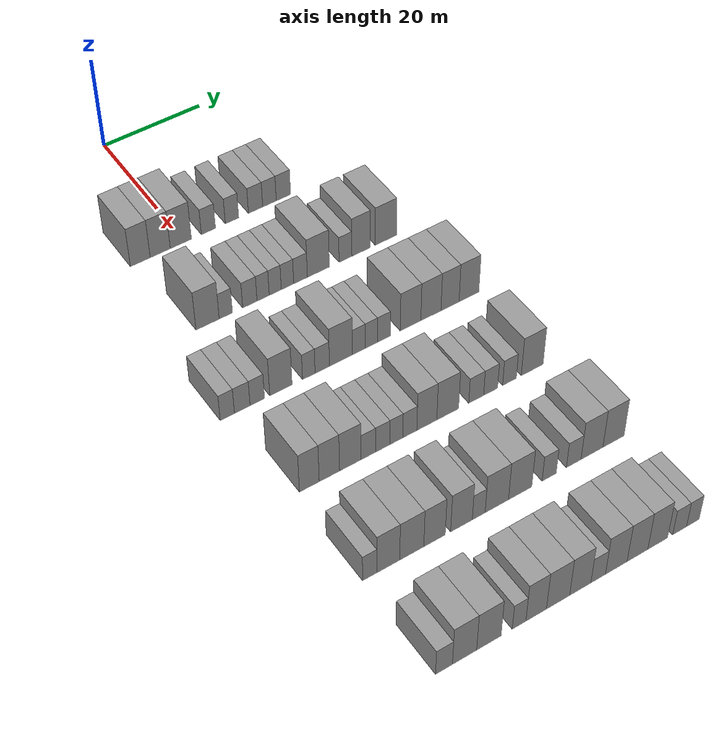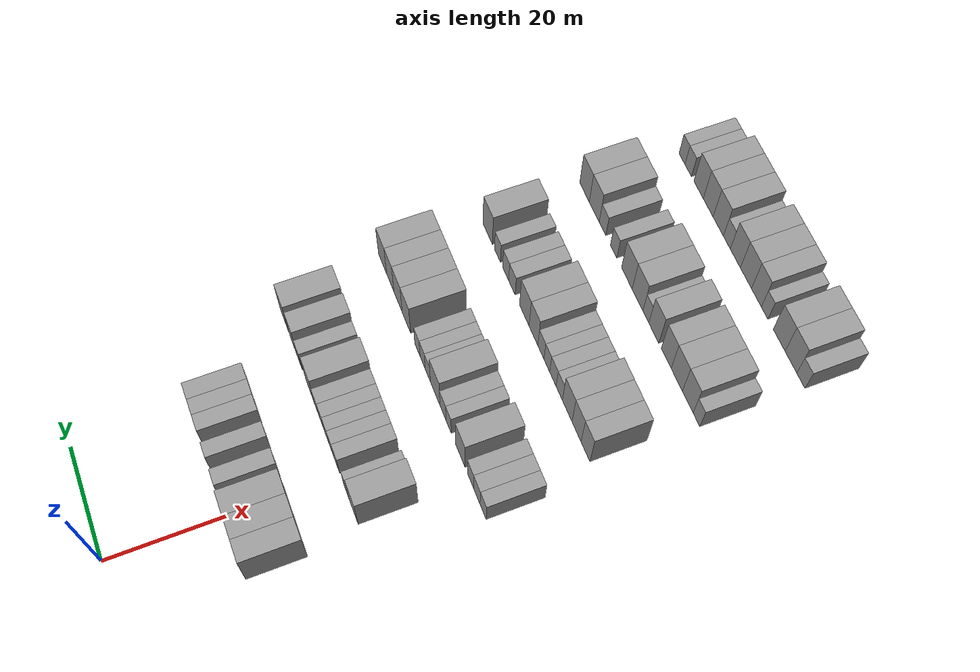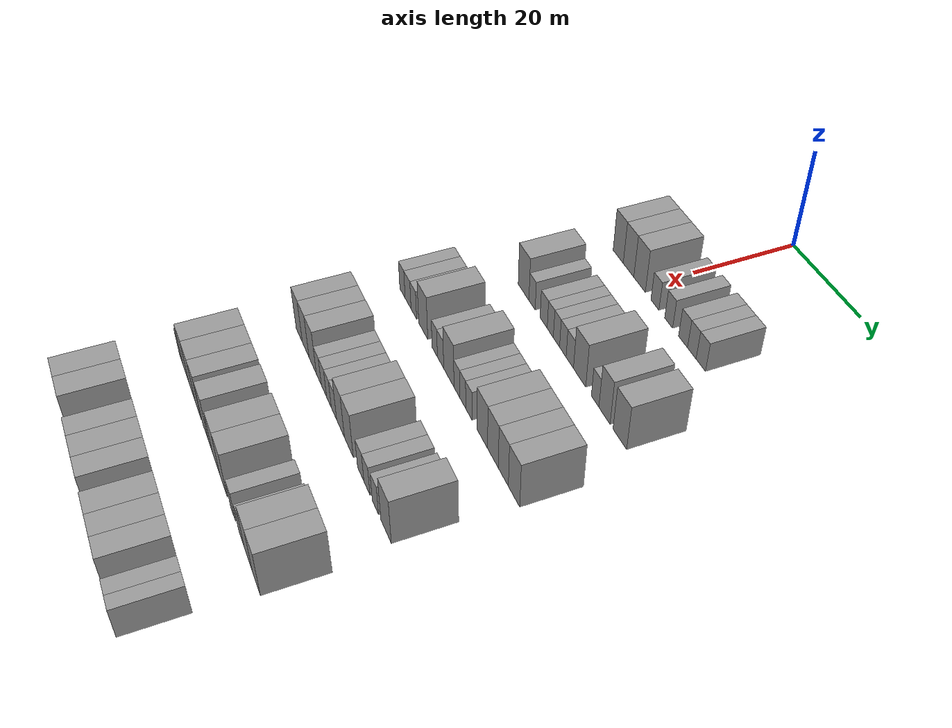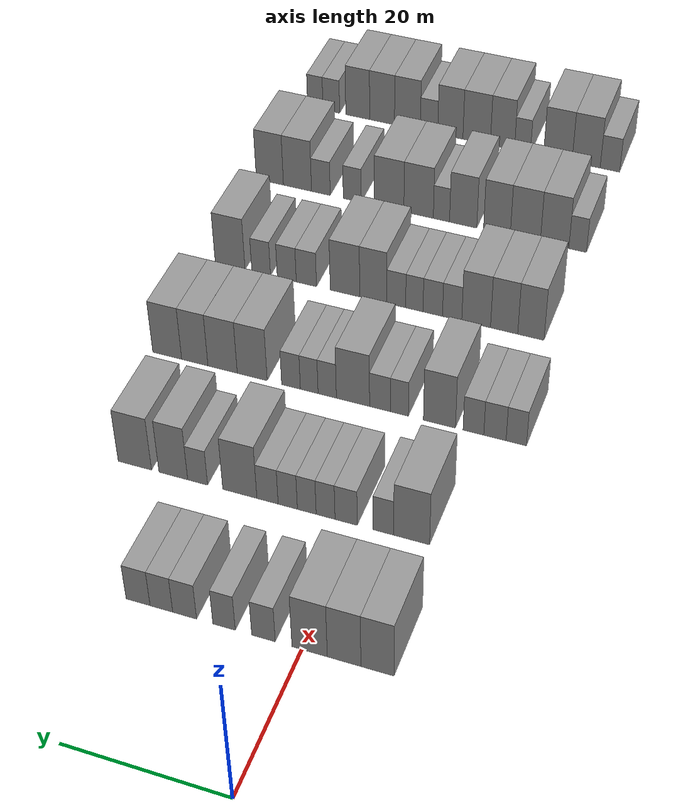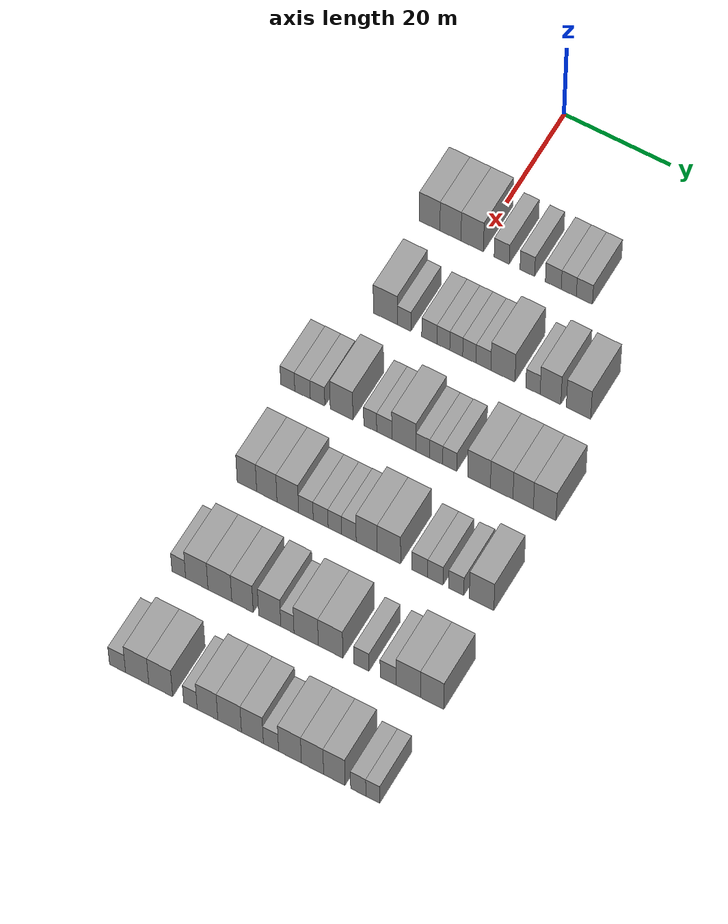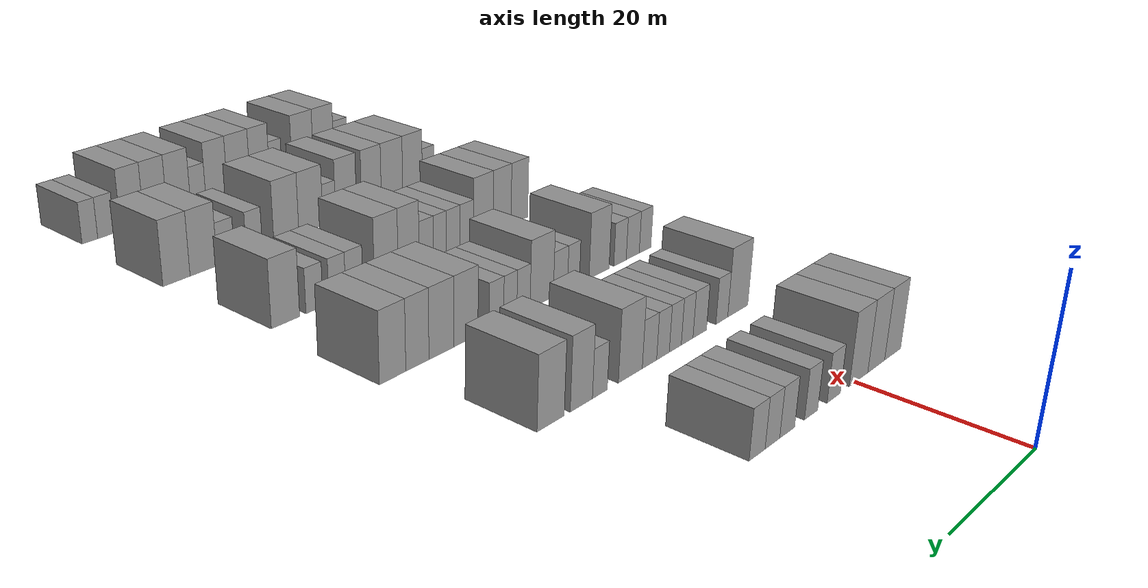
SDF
<sdf version="1.6">
 <world name="default">
  <model name="building_80">
   <static>1</static>
   <pose>25.0000 -8.8628 0 0.000000 0.000000 0.000000</pose>
   <link name="link">
    <pose>0 0 4.50 0 0 0</pose>
    <collision name="collision"><geometry><box><size>10.0000 3.8810 9.0000</size></box></geometry></collision>
    <visual name="visual">
     <cast_shadows>0</cast_shadows>
     <geometry><box><size>10.0000 3.8810 9.0000</size></box></geometry>
     <material>
      <script>
       <uri>model://grey_wall/materials/scripts</uri>
       <uri>model://grey_wall/materials/textures</uri>
       <name>vrc/grey_wall</name>
      </script>
     </material>
    </visual>
   </link>
  </model>
  <model name="building_81">
   <static>1</static>
   <pose>25.0000 -4.9381 0 0.000000 0.000000 0.000000</pose>
   <link name="link">
    <pose>0 0 4.50 0 0 0</pose>
    <collision name="collision"><geometry><box><size>10.0000 3.9684 9.0000</size></box></geometry></collision>
    <visual name="visual">
     <cast_shadows>0</cast_shadows>
     <geometry><box><size>10.0000 3.9684 9.0000</size></box></geometry>
     <material>
      <script>
       <uri>model://grey_wall/materials/scripts</uri>
       <uri>model://grey_wall/materials/textures</uri>
       <name>vrc/grey_wall</name>
      </script>
     </material>
    </visual>
   </link>
  </model>
  <model name="building_82">
   <static>1</static>
   <pose>25.0000 -0.8467 0 0.000000 0.000000 0.000000</pose>
   <link name="link">
    <pose>0 0 4.50 0 0 0</pose>
    <collision name="collision"><geometry><box><size>10.0000 4.2144 9.0000</size></box></geometry></collision>
    <visual name="visual">
     <cast_shadows>0</cast_shadows>
     <geometry><box><size>10.0000 4.2144 9.0000</size></box></geometry>
     <material>
      <script>
       <uri>model://grey_wall/materials/scripts</uri>
       <uri>model://grey_wall/materials/textures</uri>
       <name>vrc/grey_wall</name>
      </script>
     </material>
    </visual>
   </link>
  </model>
  <model name="building_83">
   <static>1</static>
   <pose>25.0000 4.6830 0 0.000000 0.000000 0.000000</pose>
   <link name="link">
    <pose>0 0 3.00 0 0 0</pose>
    <collision name="collision"><geometry><box><size>10.0000 2.8449 6.0000</size></box></geometry></collision>
    <visual name="visual">
     <cast_shadows>0</cast_shadows>
     <geometry><box><size>10.0000 2.8449 6.0000</size></box></geometry>
     <material>
      <script>
       <uri>model://grey_wall/materials/scripts</uri>
       <uri>model://grey_wall/materials/textures</uri>
       <name>vrc/grey_wall</name>
      </script>
     </material>
    </visual>
   </link>
  </model>
  <model name="building_84">
   <static>1</static>
   <pose>25.0000 9.4746 0 0.000000 0.000000 0.000000</pose>
   <link name="link">
    <pose>0 0 3.00 0 0 0</pose>
    <collision name="collision"><geometry><box><size>10.0000 2.7384 6.0000</size></box></geometry></collision>
    <visual name="visual">
     <cast_shadows>0</cast_shadows>
     <geometry><box><size>10.0000 2.7384 6.0000</size></box></geometry>
     <material>
      <script>
       <uri>model://grey_wall/materials/scripts</uri>
       <uri>model://grey_wall/materials/textures</uri>
       <name>vrc/grey_wall</name>
      </script>
     </material>
    </visual>
   </link>
  </model>
  <model name="building_85">
   <static>1</static>
   <pose>25.0000 14.3196 0 0.000000 0.000000 0.000000</pose>
   <link name="link">
    <pose>0 0 3.00 0 0 0</pose>
    <collision name="collision"><geometry><box><size>10.0000 2.9516 6.0000</size></box></geometry></collision>
    <visual name="visual">
     <cast_shadows>0</cast_shadows>
     <geometry><box><size>10.0000 2.9516 6.0000</size></box></geometry>
     <material>
      <script>
       <uri>model://grey_wall/materials/scripts</uri>
       <uri>model://grey_wall/materials/textures</uri>
       <name>vrc/grey_wall</name>
      </script>
     </material>
    </visual>
   </link>
  </model>
  <model name="building_86">
   <static>1</static>
   <pose>25.0000 17.2045 0 0.000000 0.000000 0.000000</pose>
   <link name="link">
    <pose>0 0 3.00 0 0 0</pose>
    <collision name="collision"><geometry><box><size>10.0000 2.8181 6.0000</size></box></geometry></collision>
    <visual name="visual">
     <cast_shadows>0</cast_shadows>
     <geometry><box><size>10.0000 2.8181 6.0000</size></box></geometry>
     <material>
      <script>
       <uri>model://grey_wall/materials/scripts</uri>
       <uri>model://grey_wall/materials/textures</uri>
       <name>vrc/grey_wall</name>
      </script>
     </material>
    </visual>
   </link>
  </model>
  <model name="building_87">
   <static>1</static>
   <pose>25.0000 20.1125 0 0.000000 0.000000 0.000000</pose>
   <link name="link">
    <pose>0 0 3.00 0 0 0</pose>
    <collision name="collision"><geometry><box><size>10.0000 2.9980 6.0000</size></box></geometry></collision>
    <visual name="visual">
     <cast_shadows>0</cast_shadows>
     <geometry><box><size>10.0000 2.9980 6.0000</size></box></geometry>
     <material>
      <script>
       <uri>model://grey_wall/materials/scripts</uri>
       <uri>model://grey_wall/materials/textures</uri>
       <name>vrc/grey_wall</name>
      </script>
     </material>
    </visual>
   </link>
  </model>
  <model name="building_240">
   <static>1</static>
   <pose>44.0000 -6.4663 0 0.000000 0.000000 0.000000</pose>
   <link name="link">
    <pose>0 0 4.50 0 0 0</pose>
    <collision name="collision"><geometry><box><size>10.0000 4.4723 9.0000</size></box></geometry></collision>
    <visual name="visual">
     <cast_shadows>0</cast_shadows>
     <geometry><box><size>10.0000 4.4723 9.0000</size></box></geometry>
     <material>
      <script>
       <uri>model://grey_wall/materials/scripts</uri>
       <uri>model://grey_wall/materials/textures</uri>
       <name>vrc/grey_wall</name>
      </script>
     </material>
    </visual>
   </link>
  </model>
  <model name="building_241">
   <static>1</static>
   <pose>44.0000 -2.9451 0 0.000000 0.000000 0.000000</pose>
   <link name="link">
    <pose>0 0 3.00 0 0 0</pose>
    <collision name="collision"><geometry><box><size>10.0000 2.5700 6.0000</size></box></geometry></collision>
    <visual name="visual">
     <cast_shadows>0</cast_shadows>
     <geometry><box><size>10.0000 2.5700 6.0000</size></box></geometry>
     <material>
      <script>
       <uri>model://grey_wall/materials/scripts</uri>
       <uri>model://grey_wall/materials/textures</uri>
       <name>vrc/grey_wall</name>
      </script>
     </material>
    </visual>
   </link>
  </model>
  <model name="building_242">
   <static>1</static>
   <pose>44.0000 1.7501 0 0.000000 0.000000 0.000000</pose>
   <link name="link">
    <pose>0 0 3.00 0 0 0</pose>
    <collision name="collision"><geometry><box><size>10.0000 2.8204 6.0000</size></box></geometry></collision>
    <visual name="visual">
     <cast_shadows>0</cast_shadows>
     <geometry><box><size>10.0000 2.8204 6.0000</size></box></geometry>
     <material>
      <script>
       <uri>model://grey_wall/materials/scripts</uri>
       <uri>model://grey_wall/materials/textures</uri>
       <name>vrc/grey_wall</name>
      </script>
     </material>
    </visual>
   </link>
  </model>
  <model name="building_243">
   <static>1</static>
   <pose>44.0000 4.3625 0 0.000000 0.000000 0.000000</pose>
   <link name="link">
    <pose>0 0 3.00 0 0 0</pose>
    <collision name="collision"><geometry><box><size>10.0000 2.4045 6.0000</size></box></geometry></collision>
    <visual name="visual">
     <cast_shadows>0</cast_shadows>
     <geometry><box><size>10.0000 2.4045 6.0000</size></box></geometry>
     <material>
      <script>
       <uri>model://grey_wall/materials/scripts</uri>
       <uri>model://grey_wall/materials/textures</uri>
       <name>vrc/grey_wall</name>
      </script>
     </material>
    </visual>
   </link>
  </model>
  <model name="building_244">
   <static>1</static>
   <pose>44.0000 6.7687 0 0.000000 0.000000 0.000000</pose>
   <link name="link">
    <pose>0 0 3.00 0 0 0</pose>
    <collision name="collision"><geometry><box><size>10.0000 2.4079 6.0000</size></box></geometry></collision>
    <visual name="visual">
     <cast_shadows>0</cast_shadows>
     <geometry><box><size>10.0000 2.4079 6.0000</size></box></geometry>
     <material>
      <script>
       <uri>model://grey_wall/materials/scripts</uri>
       <uri>model://grey_wall/materials/textures</uri>
       <name>vrc/grey_wall</name>
      </script>
     </material>
    </visual>
   </link>
  </model>
  <model name="building_245">
   <static>1</static>
   <pose>44.0000 9.2122 0 0.000000 0.000000 0.000000</pose>
   <link name="link">
    <pose>0 0 3.00 0 0 0</pose>
    <collision name="collision"><geometry><box><size>10.0000 2.4792 6.0000</size></box></geometry></collision>
    <visual name="visual">
     <cast_shadows>0</cast_shadows>
     <geometry><box><size>10.0000 2.4792 6.0000</size></box></geometry>
     <material>
      <script>
       <uri>model://grey_wall/materials/scripts</uri>
       <uri>model://grey_wall/materials/textures</uri>
       <name>vrc/grey_wall</name>
      </script>
     </material>
    </visual>
   </link>
  </model>
  <model name="building_246">
   <static>1</static>
   <pose>44.0000 11.8305 0 0.000000 0.000000 0.000000</pose>
   <link name="link">
    <pose>0 0 3.00 0 0 0</pose>
    <collision name="collision"><geometry><box><size>10.0000 2.7574 6.0000</size></box></geometry></collision>
    <visual name="visual">
     <cast_shadows>0</cast_shadows>
     <geometry><box><size>10.0000 2.7574 6.0000</size></box></geometry>
     <material>
      <script>
       <uri>model://grey_wall/materials/scripts</uri>
       <uri>model://grey_wall/materials/textures</uri>
       <name>vrc/grey_wall</name>
      </script>
     </material>
    </visual>
   </link>
  </model>
  <model name="building_247">
   <static>1</static>
   <pose>44.0000 15.4380 0 0.000000 0.000000 0.000000</pose>
   <link name="link">
    <pose>0 0 4.50 0 0 0</pose>
    <collision name="collision"><geometry><box><size>10.0000 4.4575 9.0000</size></box></geometry></collision>
    <visual name="visual">
     <cast_shadows>0</cast_shadows>
     <geometry><box><size>10.0000 4.4575 9.0000</size></box></geometry>
     <material>
      <script>
       <uri>model://grey_wall/materials/scripts</uri>
       <uri>model://grey_wall/materials/textures</uri>
       <name>vrc/grey_wall</name>
      </script>
     </material>
    </visual>
   </link>
  </model>
  <model name="building_248">
   <static>1</static>
   <pose>44.0000 20.9853 0 0.000000 0.000000 0.000000</pose>
   <link name="link">
    <pose>0 0 3.00 0 0 0</pose>
    <collision name="collision"><geometry><box><size>10.0000 2.6373 6.0000</size></box></geometry></collision>
    <visual name="visual">
     <cast_shadows>0</cast_shadows>
     <geometry><box><size>10.0000 2.6373 6.0000</size></box></geometry>
     <material>
      <script>
       <uri>model://grey_wall/materials/scripts</uri>
       <uri>model://grey_wall/materials/textures</uri>
       <name>vrc/grey_wall</name>
      </script>
     </material>
    </visual>
   </link>
  </model>
  <model name="building_249">
   <static>1</static>
   <pose>44.0000 24.2152 0 0.000000 0.000000 0.000000</pose>
   <link name="link">
    <pose>0 0 4.50 0 0 0</pose>
    <collision name="collision"><geometry><box><size>10.0000 3.8224 9.0000</size></box></geometry></collision>
    <visual name="visual">
     <cast_shadows>0</cast_shadows>
     <geometry><box><size>10.0000 3.8224 9.0000</size></box></geometry>
     <material>
      <script>
       <uri>model://grey_wall/materials/scripts</uri>
       <uri>model://grey_wall/materials/textures</uri>
       <name>vrc/grey_wall</name>
      </script>
     </material>
    </visual>
   </link>
  </model>
  <model name="building_250">
   <static>1</static>
   <pose>44.0000 29.3676 0 0.000000 0.000000 0.000000</pose>
   <link name="link">
    <pose>0 0 4.50 0 0 0</pose>
    <collision name="collision"><geometry><box><size>10.0000 4.4823 9.0000</size></box></geometry></collision>
    <visual name="visual">
     <cast_shadows>0</cast_shadows>
     <geometry><box><size>10.0000 4.4823 9.0000</size></box></geometry>
     <material>
      <script>
       <uri>model://grey_wall/materials/scripts</uri>
       <uri>model://grey_wall/materials/textures</uri>
       <name>vrc/grey_wall</name>
      </script>
     </material>
    </visual>
   </link>
  </model>
  <model name="building_420">
   <static>1</static>
   <pose>63.0000 -13.8254 0 0.000000 0.000000 0.000000</pose>
   <link name="link">
    <pose>0 0 3.00 0 0 0</pose>
    <collision name="collision"><geometry><box><size>10.0000 2.6360 6.0000</size></box></geometry></collision>
    <visual name="visual">
     <cast_shadows>0</cast_shadows>
     <geometry><box><size>10.0000 2.6360 6.0000</size></box></geometry>
     <material>
      <script>
       <uri>model://grey_wall/materials/scripts</uri>
       <uri>model://grey_wall/materials/textures</uri>
       <name>vrc/grey_wall</name>
      </script>
     </material>
    </visual>
   </link>
  </model>
  <model name="building_421">
   <static>1</static>
   <pose>63.0000 -11.0564 0 0.000000 0.000000 0.000000</pose>
   <link name="link">
    <pose>0 0 3.00 0 0 0</pose>
    <collision name="collision"><geometry><box><size>10.0000 2.9020 6.0000</size></box></geometry></collision>
    <visual name="visual">
     <cast_shadows>0</cast_shadows>
     <geometry><box><size>10.0000 2.9020 6.0000</size></box></geometry>
     <material>
      <script>
       <uri>model://grey_wall/materials/scripts</uri>
       <uri>model://grey_wall/materials/textures</uri>
       <name>vrc/grey_wall</name>
      </script>
     </material>
    </visual>
   </link>
  </model>
  <model name="building_422">
   <static>1</static>
   <pose>63.0000 -8.2516 0 0.000000 0.000000 0.000000</pose>
   <link name="link">
    <pose>0 0 3.00 0 0 0</pose>
    <collision name="collision"><geometry><box><size>10.0000 2.7077 6.0000</size></box></geometry></collision>
    <visual name="visual">
     <cast_shadows>0</cast_shadows>
     <geometry><box><size>10.0000 2.7077 6.0000</size></box></geometry>
     <material>
      <script>
       <uri>model://grey_wall/materials/scripts</uri>
       <uri>model://grey_wall/materials/textures</uri>
       <name>vrc/grey_wall</name>
      </script>
     </material>
    </visual>
   </link>
  </model>
  <model name="building_423">
   <static>1</static>
   <pose>63.0000 -3.7845 0 0.000000 0.000000 0.000000</pose>
   <link name="link">
    <pose>0 0 4.50 0 0 0</pose>
    <collision name="collision"><geometry><box><size>10.0000 4.2264 9.0000</size></box></geometry></collision>
    <visual name="visual">
     <cast_shadows>0</cast_shadows>
     <geometry><box><size>10.0000 4.2264 9.0000</size></box></geometry>
     <material>
      <script>
       <uri>model://grey_wall/materials/scripts</uri>
       <uri>model://grey_wall/materials/textures</uri>
       <name>vrc/grey_wall</name>
      </script>
     </material>
    </visual>
   </link>
  </model>
  <model name="building_424">
   <static>1</static>
   <pose>63.0000 1.5301 0 0.000000 0.000000 0.000000</pose>
   <link name="link">
    <pose>0 0 3.00 0 0 0</pose>
    <collision name="collision"><geometry><box><size>10.0000 2.4029 6.0000</size></box></geometry></collision>
    <visual name="visual">
     <cast_shadows>0</cast_shadows>
     <geometry><box><size>10.0000 2.4029 6.0000</size></box></geometry>
     <material>
      <script>
       <uri>model://grey_wall/materials/scripts</uri>
       <uri>model://grey_wall/materials/textures</uri>
       <name>vrc/grey_wall</name>
      </script>
     </material>
    </visual>
   </link>
  </model>
  <model name="building_425">
   <static>1</static>
   <pose>63.0000 4.1289 0 0.000000 0.000000 0.000000</pose>
   <link name="link">
    <pose>0 0 3.00 0 0 0</pose>
    <collision name="collision"><geometry><box><size>10.0000 2.7946 6.0000</size></box></geometry></collision>
    <visual name="visual">
     <cast_shadows>0</cast_shadows>
     <geometry><box><size>10.0000 2.7946 6.0000</size></box></geometry>
     <material>
      <script>
       <uri>model://grey_wall/materials/scripts</uri>
       <uri>model://grey_wall/materials/textures</uri>
       <name>vrc/grey_wall</name>
      </script>
     </material>
    </visual>
   </link>
  </model>
  <model name="building_426">
   <static>1</static>
   <pose>63.0000 7.7717 0 0.000000 0.000000 0.000000</pose>
   <link name="link">
    <pose>0 0 4.50 0 0 0</pose>
    <collision name="collision"><geometry><box><size>10.0000 4.4909 9.0000</size></box></geometry></collision>
    <visual name="visual">
     <cast_shadows>0</cast_shadows>
     <geometry><box><size>10.0000 4.4909 9.0000</size></box></geometry>
     <material>
      <script>
       <uri>model://grey_wall/materials/scripts</uri>
       <uri>model://grey_wall/materials/textures</uri>
       <name>vrc/grey_wall</name>
      </script>
     </material>
    </visual>
   </link>
  </model>
  <model name="building_427">
   <static>1</static>
   <pose>63.0000 11.2611 0 0.000000 0.000000 0.000000</pose>
   <link name="link">
    <pose>0 0 3.00 0 0 0</pose>
    <collision name="collision"><geometry><box><size>10.0000 2.4879 6.0000</size></box></geometry></collision>
    <visual name="visual">
     <cast_shadows>0</cast_shadows>
     <geometry><box><size>10.0000 2.4879 6.0000</size></box></geometry>
     <material>
      <script>
       <uri>model://grey_wall/materials/scripts</uri>
       <uri>model://grey_wall/materials/textures</uri>
       <name>vrc/grey_wall</name>
      </script>
     </material>
    </visual>
   </link>
  </model>
  <model name="building_428">
   <static>1</static>
   <pose>63.0000 13.7171 0 0.000000 0.000000 0.000000</pose>
   <link name="link">
    <pose>0 0 3.00 0 0 0</pose>
    <collision name="collision"><geometry><box><size>10.0000 2.4240 6.0000</size></box></geometry></collision>
    <visual name="visual">
     <cast_shadows>0</cast_shadows>
     <geometry><box><size>10.0000 2.4240 6.0000</size></box></geometry>
     <material>
      <script>
       <uri>model://grey_wall/materials/scripts</uri>
       <uri>model://grey_wall/materials/textures</uri>
       <name>vrc/grey_wall</name>
      </script>
     </material>
    </visual>
   </link>
  </model>
  <model name="building_429">
   <static>1</static>
   <pose>63.0000 16.2190 0 0.000000 0.000000 0.000000</pose>
   <link name="link">
    <pose>0 0 3.00 0 0 0</pose>
    <collision name="collision"><geometry><box><size>10.0000 2.5798 6.0000</size></box></geometry></collision>
    <visual name="visual">
     <cast_shadows>0</cast_shadows>
     <geometry><box><size>10.0000 2.5798 6.0000</size></box></geometry>
     <material>
      <script>
       <uri>model://grey_wall/materials/scripts</uri>
       <uri>model://grey_wall/materials/textures</uri>
       <name>vrc/grey_wall</name>
      </script>
     </material>
    </visual>
   </link>
  </model>
  <model name="building_430">
   <static>1</static>
   <pose>63.0000 21.5932 0 0.000000 0.000000 0.000000</pose>
   <link name="link">
    <pose>0 0 4.50 0 0 0</pose>
    <collision name="collision"><geometry><box><size>10.0000 4.1685 9.0000</size></box></geometry></collision>
    <visual name="visual">
     <cast_shadows>0</cast_shadows>
     <geometry><box><size>10.0000 4.1685 9.0000</size></box></geometry>
     <material>
      <script>
       <uri>model://grey_wall/materials/scripts</uri>
       <uri>model://grey_wall/materials/textures</uri>
       <name>vrc/grey_wall</name>
      </script>
     </material>
    </visual>
   </link>
  </model>
  <model name="building_431">
   <static>1</static>
   <pose>63.0000 25.7359 0 0.000000 0.000000 0.000000</pose>
   <link name="link">
    <pose>0 0 4.50 0 0 0</pose>
    <collision name="collision"><geometry><box><size>10.0000 4.1170 9.0000</size></box></geometry></collision>
    <visual name="visual">
     <cast_shadows>0</cast_shadows>
     <geometry><box><size>10.0000 4.1170 9.0000</size></box></geometry>
     <material>
      <script>
       <uri>model://grey_wall/materials/scripts</uri>
       <uri>model://grey_wall/materials/textures</uri>
       <name>vrc/grey_wall</name>
      </script>
     </material>
    </visual>
   </link>
  </model>
  <model name="building_432">
   <static>1</static>
   <pose>63.0000 29.6585 0 0.000000 0.000000 0.000000</pose>
   <link name="link">
    <pose>0 0 4.50 0 0 0</pose>
    <collision name="collision"><geometry><box><size>10.0000 3.7280 9.0000</size></box></geometry></collision>
    <visual name="visual">
     <cast_shadows>0</cast_shadows>
     <geometry><box><size>10.0000 3.7280 9.0000</size></box></geometry>
     <material>
      <script>
       <uri>model://grey_wall/materials/scripts</uri>
       <uri>model://grey_wall/materials/textures</uri>
       <name>vrc/grey_wall</name>
      </script>
     </material>
    </visual>
   </link>
  </model>
  <model name="building_433">
   <static>1</static>
   <pose>63.0000 33.5793 0 0.000000 0.000000 0.000000</pose>
   <link name="link">
    <pose>0 0 4.50 0 0 0</pose>
    <collision name="collision"><geometry><box><size>10.0000 4.1136 9.0000</size></box></geometry></collision>
    <visual name="visual">
     <cast_shadows>0</cast_shadows>
     <geometry><box><size>10.0000 4.1136 9.0000</size></box></geometry>
     <material>
      <script>
       <uri>model://grey_wall/materials/scripts</uri>
       <uri>model://grey_wall/materials/textures</uri>
       <name>vrc/grey_wall</name>
      </script>
     </material>
    </visual>
   </link>
  </model>
  <model name="building_606">
   <static>1</static>
   <pose>82.0000 -10.3448 0 0.000000 0.000000 0.000000</pose>
   <link name="link">
    <pose>0 0 4.50 0 0 0</pose>
    <collision name="collision"><geometry><box><size>10.0000 3.6041 9.0000</size></box></geometry></collision>
    <visual name="visual">
     <cast_shadows>0</cast_shadows>
     <geometry><box><size>10.0000 3.6041 9.0000</size></box></geometry>
     <material>
      <script>
       <uri>model://grey_wall/materials/scripts</uri>
       <uri>model://grey_wall/materials/textures</uri>
       <name>vrc/grey_wall</name>
      </script>
     </material>
    </visual>
   </link>
  </model>
  <model name="building_607">
   <static>1</static>
   <pose>82.0000 -6.6641 0 0.000000 0.000000 0.000000</pose>
   <link name="link">
    <pose>0 0 4.50 0 0 0</pose>
    <collision name="collision"><geometry><box><size>10.0000 3.7574 9.0000</size></box></geometry></collision>
    <visual name="visual">
     <cast_shadows>0</cast_shadows>
     <geometry><box><size>10.0000 3.7574 9.0000</size></box></geometry>
     <material>
      <script>
       <uri>model://grey_wall/materials/scripts</uri>
       <uri>model://grey_wall/materials/textures</uri>
       <name>vrc/grey_wall</name>
      </script>
     </material>
    </visual>
   </link>
  </model>
  <model name="building_608">
   <static>1</static>
   <pose>82.0000 -2.7860 0 0.000000 0.000000 0.000000</pose>
   <link name="link">
    <pose>0 0 4.50 0 0 0</pose>
    <collision name="collision"><geometry><box><size>10.0000 3.9989 9.0000</size></box></geometry></collision>
    <visual name="visual">
     <cast_shadows>0</cast_shadows>
     <geometry><box><size>10.0000 3.9989 9.0000</size></box></geometry>
     <material>
      <script>
       <uri>model://grey_wall/materials/scripts</uri>
       <uri>model://grey_wall/materials/textures</uri>
       <name>vrc/grey_wall</name>
      </script>
     </material>
    </visual>
   </link>
  </model>
  <model name="building_609">
   <static>1</static>
   <pose>82.0000 0.5609 0 0.000000 0.000000 0.000000</pose>
   <link name="link">
    <pose>0 0 3.00 0 0 0</pose>
    <collision name="collision"><geometry><box><size>10.0000 2.6948 6.0000</size></box></geometry></collision>
    <visual name="visual">
     <cast_shadows>0</cast_shadows>
     <geometry><box><size>10.0000 2.6948 6.0000</size></box></geometry>
     <material>
      <script>
       <uri>model://grey_wall/materials/scripts</uri>
       <uri>model://grey_wall/materials/textures</uri>
       <name>vrc/grey_wall</name>
      </script>
     </material>
    </visual>
   </link>
  </model>
  <model name="building_610">
   <static>1</static>
   <pose>82.0000 3.2771 0 0.000000 0.000000 0.000000</pose>
   <link name="link">
    <pose>0 0 3.00 0 0 0</pose>
    <collision name="collision"><geometry><box><size>10.0000 2.7377 6.0000</size></box></geometry></collision>
    <visual name="visual">
     <cast_shadows>0</cast_shadows>
     <geometry><box><size>10.0000 2.7377 6.0000</size></box></geometry>
     <material>
      <script>
       <uri>model://grey_wall/materials/scripts</uri>
       <uri>model://grey_wall/materials/textures</uri>
       <name>vrc/grey_wall</name>
      </script>
     </material>
    </visual>
   </link>
  </model>
  <model name="building_611">
   <static>1</static>
   <pose>82.0000 5.8769 0 0.000000 0.000000 0.000000</pose>
   <link name="link">
    <pose>0 0 3.00 0 0 0</pose>
    <collision name="collision"><geometry><box><size>10.0000 2.4618 6.0000</size></box></geometry></collision>
    <visual name="visual">
     <cast_shadows>0</cast_shadows>
     <geometry><box><size>10.0000 2.4618 6.0000</size></box></geometry>
     <material>
      <script>
       <uri>model://grey_wall/materials/scripts</uri>
       <uri>model://grey_wall/materials/textures</uri>
       <name>vrc/grey_wall</name>
      </script>
     </material>
    </visual>
   </link>
  </model>
  <model name="building_612">
   <static>1</static>
   <pose>82.0000 8.4522 0 0.000000 0.000000 0.000000</pose>
   <link name="link">
    <pose>0 0 3.00 0 0 0</pose>
    <collision name="collision"><geometry><box><size>10.0000 2.6888 6.0000</size></box></geometry></collision>
    <visual name="visual">
     <cast_shadows>0</cast_shadows>
     <geometry><box><size>10.0000 2.6888 6.0000</size></box></geometry>
     <material>
      <script>
       <uri>model://grey_wall/materials/scripts</uri>
       <uri>model://grey_wall/materials/textures</uri>
       <name>vrc/grey_wall</name>
      </script>
     </material>
    </visual>
   </link>
  </model>
  <model name="building_613">
   <static>1</static>
   <pose>82.0000 11.7281 0 0.000000 0.000000 0.000000</pose>
   <link name="link">
    <pose>0 0 4.50 0 0 0</pose>
    <collision name="collision"><geometry><box><size>10.0000 3.8630 9.0000</size></box></geometry></collision>
    <visual name="visual">
     <cast_shadows>0</cast_shadows>
     <geometry><box><size>10.0000 3.8630 9.0000</size></box></geometry>
     <material>
      <script>
       <uri>model://grey_wall/materials/scripts</uri>
       <uri>model://grey_wall/materials/textures</uri>
       <name>vrc/grey_wall</name>
      </script>
     </material>
    </visual>
   </link>
  </model>
  <model name="building_614">
   <static>1</static>
   <pose>82.0000 15.7890 0 0.000000 0.000000 0.000000</pose>
   <link name="link">
    <pose>0 0 4.50 0 0 0</pose>
    <collision name="collision"><geometry><box><size>10.0000 4.2587 9.0000</size></box></geometry></collision>
    <visual name="visual">
     <cast_shadows>0</cast_shadows>
     <geometry><box><size>10.0000 4.2587 9.0000</size></box></geometry>
     <material>
      <script>
       <uri>model://grey_wall/materials/scripts</uri>
       <uri>model://grey_wall/materials/textures</uri>
       <name>vrc/grey_wall</name>
      </script>
     </material>
    </visual>
   </link>
  </model>
  <model name="building_615">
   <static>1</static>
   <pose>82.0000 21.3951 0 0.000000 0.000000 0.000000</pose>
   <link name="link">
    <pose>0 0 3.00 0 0 0</pose>
    <collision name="collision"><geometry><box><size>10.0000 2.9534 6.0000</size></box></geometry></collision>
    <visual name="visual">
     <cast_shadows>0</cast_shadows>
     <geometry><box><size>10.0000 2.9534 6.0000</size></box></geometry>
     <material>
      <script>
       <uri>model://grey_wall/materials/scripts</uri>
       <uri>model://grey_wall/materials/textures</uri>
       <name>vrc/grey_wall</name>
      </script>
     </material>
    </visual>
   </link>
  </model>
  <model name="building_616">
   <static>1</static>
   <pose>82.0000 24.2642 0 0.000000 0.000000 0.000000</pose>
   <link name="link">
    <pose>0 0 3.00 0 0 0</pose>
    <collision name="collision"><geometry><box><size>10.0000 2.7849 6.0000</size></box></geometry></collision>
    <visual name="visual">
     <cast_shadows>0</cast_shadows>
     <geometry><box><size>10.0000 2.7849 6.0000</size></box></geometry>
     <material>
      <script>
       <uri>model://grey_wall/materials/scripts</uri>
       <uri>model://grey_wall/materials/textures</uri>
       <name>vrc/grey_wall</name>
      </script>
     </material>
    </visual>
   </link>
  </model>
  <model name="building_617">
   <static>1</static>
   <pose>82.0000 28.0379 0 0.000000 0.000000 0.000000</pose>
   <link name="link">
    <pose>0 0 3.00 0 0 0</pose>
    <collision name="collision"><geometry><box><size>10.0000 2.7624 6.0000</size></box></geometry></collision>
    <visual name="visual">
     <cast_shadows>0</cast_shadows>
     <geometry><box><size>10.0000 2.7624 6.0000</size></box></geometry>
     <material>
      <script>
       <uri>model://grey_wall/materials/scripts</uri>
       <uri>model://grey_wall/materials/textures</uri>
       <name>vrc/grey_wall</name>
      </script>
     </material>
    </visual>
   </link>
  </model>
  <model name="building_618">
   <static>1</static>
   <pose>82.0000 32.6429 0 0.000000 0.000000 0.000000</pose>
   <link name="link">
    <pose>0 0 4.50 0 0 0</pose>
    <collision name="collision"><geometry><box><size>10.0000 4.4476 9.0000</size></box></geometry></collision>
    <visual name="visual">
     <cast_shadows>0</cast_shadows>
     <geometry><box><size>10.0000 4.4476 9.0000</size></box></geometry>
     <material>
      <script>
       <uri>model://grey_wall/materials/scripts</uri>
       <uri>model://grey_wall/materials/textures</uri>
       <name>vrc/grey_wall</name>
      </script>
     </material>
    </visual>
   </link>
  </model>
  <model name="building_788">
   <static>1</static>
   <pose>101.0000 -11.7467 0 0.000000 0.000000 0.000000</pose>
   <link name="link">
    <pose>0 0 3.00 0 0 0</pose>
    <collision name="collision"><geometry><box><size>10.0000 2.5338 6.0000</size></box></geometry></collision>
    <visual name="visual">
     <cast_shadows>0</cast_shadows>
     <geometry><box><size>10.0000 2.5338 6.0000</size></box></geometry>
     <material>
      <script>
       <uri>model://grey_wall/materials/scripts</uri>
       <uri>model://grey_wall/materials/textures</uri>
       <name>vrc/grey_wall</name>
      </script>
     </material>
    </visual>
   </link>
  </model>
  <model name="building_789">
   <static>1</static>
   <pose>101.0000 -8.4242 0 0.000000 0.000000 0.000000</pose>
   <link name="link">
    <pose>0 0 4.50 0 0 0</pose>
    <collision name="collision"><geometry><box><size>10.0000 4.1113 9.0000</size></box></geometry></collision>
    <visual name="visual">
     <cast_shadows>0</cast_shadows>
     <geometry><box><size>10.0000 4.1113 9.0000</size></box></geometry>
     <material>
      <script>
       <uri>model://grey_wall/materials/scripts</uri>
       <uri>model://grey_wall/materials/textures</uri>
       <name>vrc/grey_wall</name>
      </script>
     </material>
    </visual>
   </link>
  </model>
  <model name="building_790">
   <static>1</static>
   <pose>101.0000 -4.1806 0 0.000000 0.000000 0.000000</pose>
   <link name="link">
    <pose>0 0 4.50 0 0 0</pose>
    <collision name="collision"><geometry><box><size>10.0000 4.3757 9.0000</size></box></geometry></collision>
    <visual name="visual">
     <cast_shadows>0</cast_shadows>
     <geometry><box><size>10.0000 4.3757 9.0000</size></box></geometry>
     <material>
      <script>
       <uri>model://grey_wall/materials/scripts</uri>
       <uri>model://grey_wall/materials/textures</uri>
       <name>vrc/grey_wall</name>
      </script>
     </material>
    </visual>
   </link>
  </model>
  <model name="building_791">
   <static>1</static>
   <pose>101.0000 -0.0316 0 0.000000 0.000000 0.000000</pose>
   <link name="link">
    <pose>0 0 4.50 0 0 0</pose>
    <collision name="collision"><geometry><box><size>10.0000 3.9223 9.0000</size></box></geometry></collision>
    <visual name="visual">
     <cast_shadows>0</cast_shadows>
     <geometry><box><size>10.0000 3.9223 9.0000</size></box></geometry>
     <material>
      <script>
       <uri>model://grey_wall/materials/scripts</uri>
       <uri>model://grey_wall/materials/textures</uri>
       <name>vrc/grey_wall</name>
      </script>
     </material>
    </visual>
   </link>
  </model>
  <model name="building_792">
   <static>1</static>
   <pose>101.0000 4.9466 0 0.000000 0.000000 0.000000</pose>
   <link name="link">
    <pose>0 0 4.50 0 0 0</pose>
    <collision name="collision"><geometry><box><size>10.0000 4.0341 9.0000</size></box></geometry></collision>
    <visual name="visual">
     <cast_shadows>0</cast_shadows>
     <geometry><box><size>10.0000 4.0341 9.0000</size></box></geometry>
     <material>
      <script>
       <uri>model://grey_wall/materials/scripts</uri>
       <uri>model://grey_wall/materials/textures</uri>
       <name>vrc/grey_wall</name>
      </script>
     </material>
    </visual>
   </link>
  </model>
  <model name="building_793">
   <static>1</static>
   <pose>101.0000 8.1683 0 0.000000 0.000000 0.000000</pose>
   <link name="link">
    <pose>0 0 3.00 0 0 0</pose>
    <collision name="collision"><geometry><box><size>10.0000 2.4094 6.0000</size></box></geometry></collision>
    <visual name="visual">
     <cast_shadows>0</cast_shadows>
     <geometry><box><size>10.0000 2.4094 6.0000</size></box></geometry>
     <material>
      <script>
       <uri>model://grey_wall/materials/scripts</uri>
       <uri>model://grey_wall/materials/textures</uri>
       <name>vrc/grey_wall</name>
      </script>
     </material>
    </visual>
   </link>
  </model>
  <model name="building_794">
   <static>1</static>
   <pose>101.0000 11.5841 0 0.000000 0.000000 0.000000</pose>
   <link name="link">
    <pose>0 0 4.50 0 0 0</pose>
    <collision name="collision"><geometry><box><size>10.0000 4.4220 9.0000</size></box></geometry></collision>
    <visual name="visual">
     <cast_shadows>0</cast_shadows>
     <geometry><box><size>10.0000 4.4220 9.0000</size></box></geometry>
     <material>
      <script>
       <uri>model://grey_wall/materials/scripts</uri>
       <uri>model://grey_wall/materials/textures</uri>
       <name>vrc/grey_wall</name>
      </script>
     </material>
    </visual>
   </link>
  </model>
  <model name="building_795">
   <static>1</static>
   <pose>101.0000 16.0269 0 0.000000 0.000000 0.000000</pose>
   <link name="link">
    <pose>0 0 4.50 0 0 0</pose>
    <collision name="collision"><geometry><box><size>10.0000 4.4636 9.0000</size></box></geometry></collision>
    <visual name="visual">
     <cast_shadows>0</cast_shadows>
     <geometry><box><size>10.0000 4.4636 9.0000</size></box></geometry>
     <material>
      <script>
       <uri>model://grey_wall/materials/scripts</uri>
       <uri>model://grey_wall/materials/textures</uri>
       <name>vrc/grey_wall</name>
      </script>
     </material>
    </visual>
   </link>
  </model>
  <model name="building_796">
   <static>1</static>
   <pose>101.0000 21.6288 0 0.000000 0.000000 0.000000</pose>
   <link name="link">
    <pose>0 0 3.00 0 0 0</pose>
    <collision name="collision"><geometry><box><size>10.0000 2.7401 6.0000</size></box></geometry></collision>
    <visual name="visual">
     <cast_shadows>0</cast_shadows>
     <geometry><box><size>10.0000 2.7401 6.0000</size></box></geometry>
     <material>
      <script>
       <uri>model://grey_wall/materials/scripts</uri>
       <uri>model://grey_wall/materials/textures</uri>
       <name>vrc/grey_wall</name>
      </script>
     </material>
    </visual>
   </link>
  </model>
  <model name="building_797">
   <static>1</static>
   <pose>101.0000 26.4400 0 0.000000 0.000000 0.000000</pose>
   <link name="link">
    <pose>0 0 3.00 0 0 0</pose>
    <collision name="collision"><geometry><box><size>10.0000 2.8825 6.0000</size></box></geometry></collision>
    <visual name="visual">
     <cast_shadows>0</cast_shadows>
     <geometry><box><size>10.0000 2.8825 6.0000</size></box></geometry>
     <material>
      <script>
       <uri>model://grey_wall/materials/scripts</uri>
       <uri>model://grey_wall/materials/textures</uri>
       <name>vrc/grey_wall</name>
      </script>
     </material>
    </visual>
   </link>
  </model>
  <model name="building_798">
   <static>1</static>
   <pose>101.0000 30.0633 0 0.000000 0.000000 0.000000</pose>
   <link name="link">
    <pose>0 0 4.50 0 0 0</pose>
    <collision name="collision"><geometry><box><size>10.0000 4.3641 9.0000</size></box></geometry></collision>
    <visual name="visual">
     <cast_shadows>0</cast_shadows>
     <geometry><box><size>10.0000 4.3641 9.0000</size></box></geometry>
     <material>
      <script>
       <uri>model://grey_wall/materials/scripts</uri>
       <uri>model://grey_wall/materials/textures</uri>
       <name>vrc/grey_wall</name>
      </script>
     </material>
    </visual>
   </link>
  </model>
  <model name="building_799">
   <static>1</static>
   <pose>101.0000 34.3633 0 0.000000 0.000000 0.000000</pose>
   <link name="link">
    <pose>0 0 4.50 0 0 0</pose>
    <collision name="collision"><geometry><box><size>10.0000 4.2359 9.0000</size></box></geometry></collision>
    <visual name="visual">
     <cast_shadows>0</cast_shadows>
     <geometry><box><size>10.0000 4.2359 9.0000</size></box></geometry>
     <material>
      <script>
       <uri>model://grey_wall/materials/scripts</uri>
       <uri>model://grey_wall/materials/textures</uri>
       <name>vrc/grey_wall</name>
      </script>
     </material>
    </visual>
   </link>
  </model>
  <model name="building_966">
   <static>1</static>
   <pose>120.0000 -11.6476 0 0.000000 0.000000 0.000000</pose>
   <link name="link">
    <pose>0 0 3.00 0 0 0</pose>
    <collision name="collision"><geometry><box><size>10.0000 2.9346 6.0000</size></box></geometry></collision>
    <visual name="visual">
     <cast_shadows>0</cast_shadows>
     <geometry><box><size>10.0000 2.9346 6.0000</size></box></geometry>
     <material>
      <script>
       <uri>model://grey_wall/materials/scripts</uri>
       <uri>model://grey_wall/materials/textures</uri>
       <name>vrc/grey_wall</name>
      </script>
     </material>
    </visual>
   </link>
  </model>
  <model name="building_967">
   <static>1</static>
   <pose>120.0000 -8.0524 0 0.000000 0.000000 0.000000</pose>
   <link name="link">
    <pose>0 0 4.50 0 0 0</pose>
    <collision name="collision"><geometry><box><size>10.0000 4.2559 9.0000</size></box></geometry></collision>
    <visual name="visual">
     <cast_shadows>0</cast_shadows>
     <geometry><box><size>10.0000 4.2559 9.0000</size></box></geometry>
     <material>
      <script>
       <uri>model://grey_wall/materials/scripts</uri>
       <uri>model://grey_wall/materials/textures</uri>
       <name>vrc/grey_wall</name>
      </script>
     </material>
    </visual>
   </link>
  </model>
  <model name="building_968">
   <static>1</static>
   <pose>120.0000 -3.7504 0 0.000000 0.000000 0.000000</pose>
   <link name="link">
    <pose>0 0 4.50 0 0 0</pose>
    <collision name="collision"><geometry><box><size>10.0000 4.3481 9.0000</size></box></geometry></collision>
    <visual name="visual">
     <cast_shadows>0</cast_shadows>
     <geometry><box><size>10.0000 4.3481 9.0000</size></box></geometry>
     <material>
      <script>
       <uri>model://grey_wall/materials/scripts</uri>
       <uri>model://grey_wall/materials/textures</uri>
       <name>vrc/grey_wall</name>
      </script>
     </material>
    </visual>
   </link>
  </model>
  <model name="building_969">
   <static>1</static>
   <pose>120.0000 1.6539 0 0.000000 0.000000 0.000000</pose>
   <link name="link">
    <pose>0 0 3.00 0 0 0</pose>
    <collision name="collision"><geometry><box><size>10.0000 2.4603 6.0000</size></box></geometry></collision>
    <visual name="visual">
     <cast_shadows>0</cast_shadows>
     <geometry><box><size>10.0000 2.4603 6.0000</size></box></geometry>
     <material>
      <script>
       <uri>model://grey_wall/materials/scripts</uri>
       <uri>model://grey_wall/materials/textures</uri>
       <name>vrc/grey_wall</name>
      </script>
     </material>
    </visual>
   </link>
  </model>
  <model name="building_970">
   <static>1</static>
   <pose>120.0000 4.7565 0 0.000000 0.000000 0.000000</pose>
   <link name="link">
    <pose>0 0 4.50 0 0 0</pose>
    <collision name="collision"><geometry><box><size>10.0000 3.7449 9.0000</size></box></geometry></collision>
    <visual name="visual">
     <cast_shadows>0</cast_shadows>
     <geometry><box><size>10.0000 3.7449 9.0000</size></box></geometry>
     <material>
      <script>
       <uri>model://grey_wall/materials/scripts</uri>
       <uri>model://grey_wall/materials/textures</uri>
       <name>vrc/grey_wall</name>
      </script>
     </material>
    </visual>
   </link>
  </model>
  <model name="building_971">
   <static>1</static>
   <pose>120.0000 8.7693 0 0.000000 0.000000 0.000000</pose>
   <link name="link">
    <pose>0 0 4.50 0 0 0</pose>
    <collision name="collision"><geometry><box><size>10.0000 4.2808 9.0000</size></box></geometry></collision>
    <visual name="visual">
     <cast_shadows>0</cast_shadows>
     <geometry><box><size>10.0000 4.2808 9.0000</size></box></geometry>
     <material>
      <script>
       <uri>model://grey_wall/materials/scripts</uri>
       <uri>model://grey_wall/materials/textures</uri>
       <name>vrc/grey_wall</name>
      </script>
     </material>
    </visual>
   </link>
  </model>
  <model name="building_972">
   <static>1</static>
   <pose>120.0000 12.8876 0 0.000000 0.000000 0.000000</pose>
   <link name="link">
    <pose>0 0 4.50 0 0 0</pose>
    <collision name="collision"><geometry><box><size>10.0000 3.9557 9.0000</size></box></geometry></collision>
    <visual name="visual">
     <cast_shadows>0</cast_shadows>
     <geometry><box><size>10.0000 3.9557 9.0000</size></box></geometry>
     <material>
      <script>
       <uri>model://grey_wall/materials/scripts</uri>
       <uri>model://grey_wall/materials/textures</uri>
       <name>vrc/grey_wall</name>
      </script>
     </material>
    </visual>
   </link>
  </model>
  <model name="building_973">
   <static>1</static>
   <pose>120.0000 16.2359 0 0.000000 0.000000 0.000000</pose>
   <link name="link">
    <pose>0 0 3.00 0 0 0</pose>
    <collision name="collision"><geometry><box><size>10.0000 2.7408 6.0000</size></box></geometry></collision>
    <visual name="visual">
     <cast_shadows>0</cast_shadows>
     <geometry><box><size>10.0000 2.7408 6.0000</size></box></geometry>
     <material>
      <script>
       <uri>model://grey_wall/materials/scripts</uri>
       <uri>model://grey_wall/materials/textures</uri>
       <name>vrc/grey_wall</name>
      </script>
     </material>
    </visual>
   </link>
  </model>
  <model name="building_974">
   <static>1</static>
   <pose>120.0000 19.6628 0 0.000000 0.000000 0.000000</pose>
   <link name="link">
    <pose>0 0 4.50 0 0 0</pose>
    <collision name="collision"><geometry><box><size>10.0000 4.1131 9.0000</size></box></geometry></collision>
    <visual name="visual">
     <cast_shadows>0</cast_shadows>
     <geometry><box><size>10.0000 4.1131 9.0000</size></box></geometry>
     <material>
      <script>
       <uri>model://grey_wall/materials/scripts</uri>
       <uri>model://grey_wall/materials/textures</uri>
       <name>vrc/grey_wall</name>
      </script>
     </material>
    </visual>
   </link>
  </model>
  <model name="building_975">
   <static>1</static>
   <pose>120.0000 23.7107 0 0.000000 0.000000 0.000000</pose>
   <link name="link">
    <pose>0 0 4.50 0 0 0</pose>
    <collision name="collision"><geometry><box><size>10.0000 3.9827 9.0000</size></box></geometry></collision>
    <visual name="visual">
     <cast_shadows>0</cast_shadows>
     <geometry><box><size>10.0000 3.9827 9.0000</size></box></geometry>
     <material>
      <script>
       <uri>model://grey_wall/materials/scripts</uri>
       <uri>model://grey_wall/materials/textures</uri>
       <name>vrc/grey_wall</name>
      </script>
     </material>
    </visual>
   </link>
  </model>
  <model name="building_976">
   <static>1</static>
   <pose>120.0000 27.6254 0 0.000000 0.000000 0.000000</pose>
   <link name="link">
    <pose>0 0 4.50 0 0 0</pose>
    <collision name="collision"><geometry><box><size>10.0000 3.8466 9.0000</size></box></geometry></collision>
    <visual name="visual">
     <cast_shadows>0</cast_shadows>
     <geometry><box><size>10.0000 3.8466 9.0000</size></box></geometry>
     <material>
      <script>
       <uri>model://grey_wall/materials/scripts</uri>
       <uri>model://grey_wall/materials/textures</uri>
       <name>vrc/grey_wall</name>
      </script>
     </material>
    </visual>
   </link>
  </model>
  <model name="building_977">
   <static>1</static>
   <pose>120.0000 31.9056 0 0.000000 0.000000 0.000000</pose>
   <link name="link">
    <pose>0 0 3.00 0 0 0</pose>
    <collision name="collision"><geometry><box><size>10.0000 2.7137 6.0000</size></box></geometry></collision>
    <visual name="visual">
     <cast_shadows>0</cast_shadows>
     <geometry><box><size>10.0000 2.7137 6.0000</size></box></geometry>
     <material>
      <script>
       <uri>model://grey_wall/materials/scripts</uri>
       <uri>model://grey_wall/materials/textures</uri>
       <name>vrc/grey_wall</name>
      </script>
     </material>
    </visual>
   </link>
  </model>
  <model name="building_978">
   <static>1</static>
   <pose>120.0000 34.5085 0 0.000000 0.000000 0.000000</pose>
   <link name="link">
    <pose>0 0 3.00 0 0 0</pose>
    <collision name="collision"><geometry><box><size>10.0000 2.4922 6.0000</size></box></geometry></collision>
    <visual name="visual">
     <cast_shadows>0</cast_shadows>
     <geometry><box><size>10.0000 2.4922 6.0000</size></box></geometry>
     <material>
      <script>
       <uri>model://grey_wall/materials/scripts</uri>
       <uri>model://grey_wall/materials/textures</uri>
       <name>vrc/grey_wall</name>
      </script>
     </material>
    </visual>
   </link>
  </model>
 </world>
</sdf>
